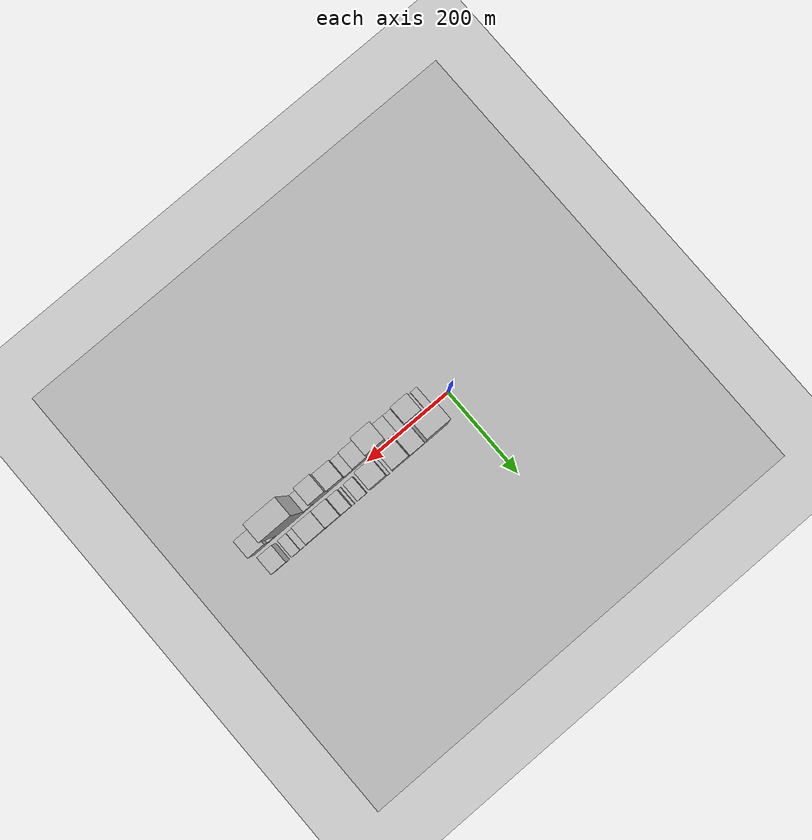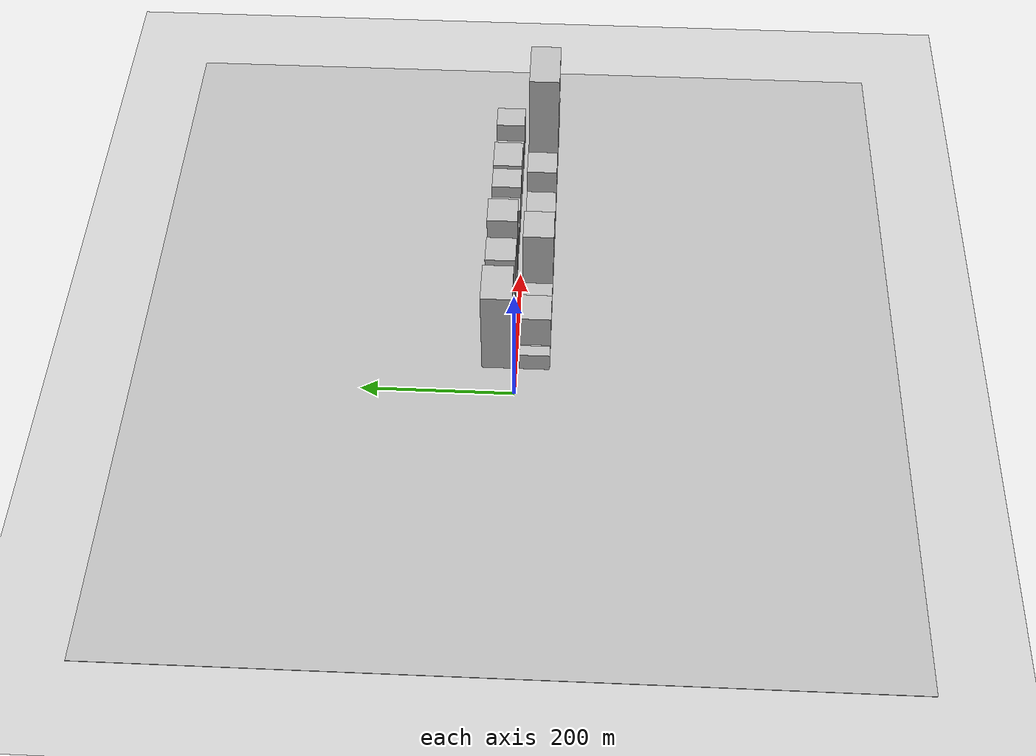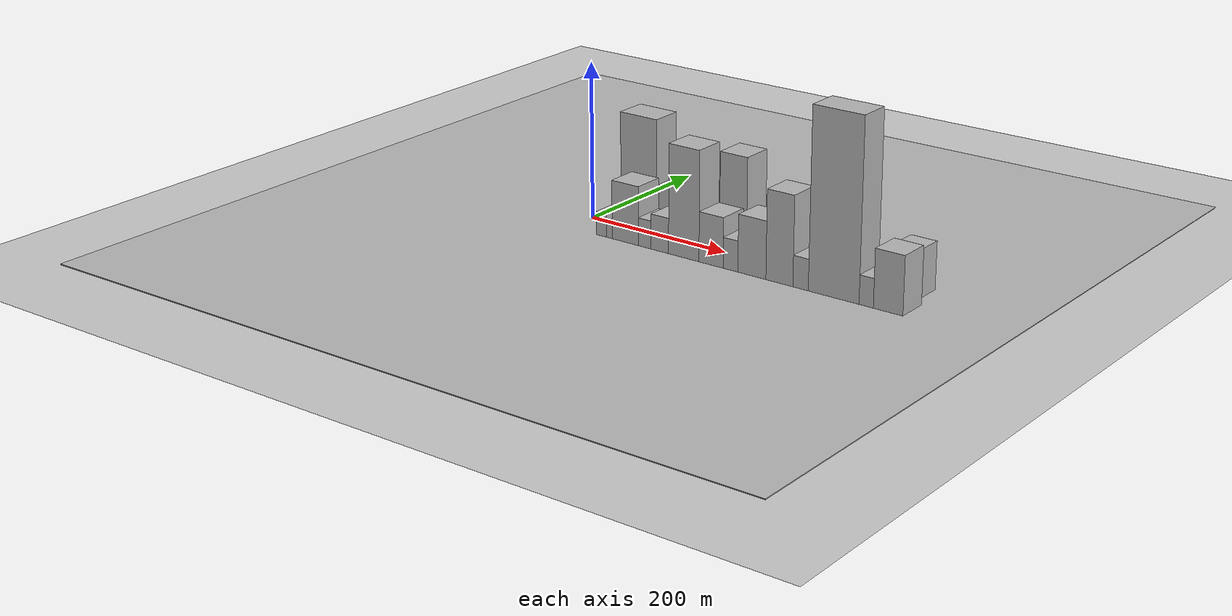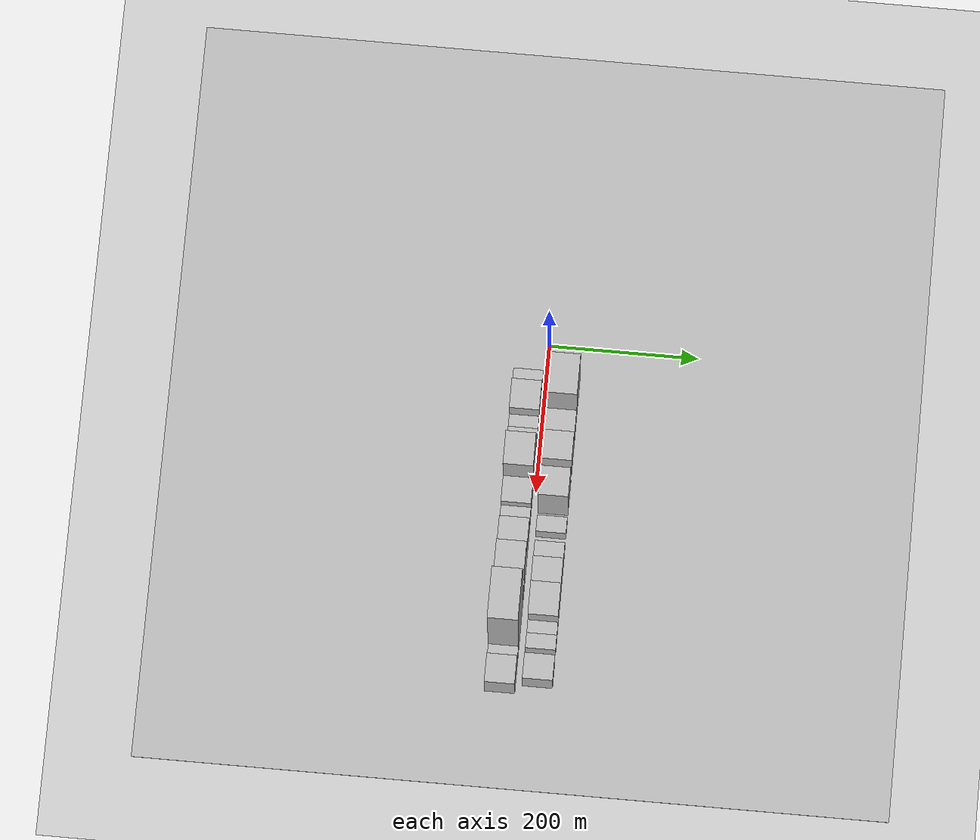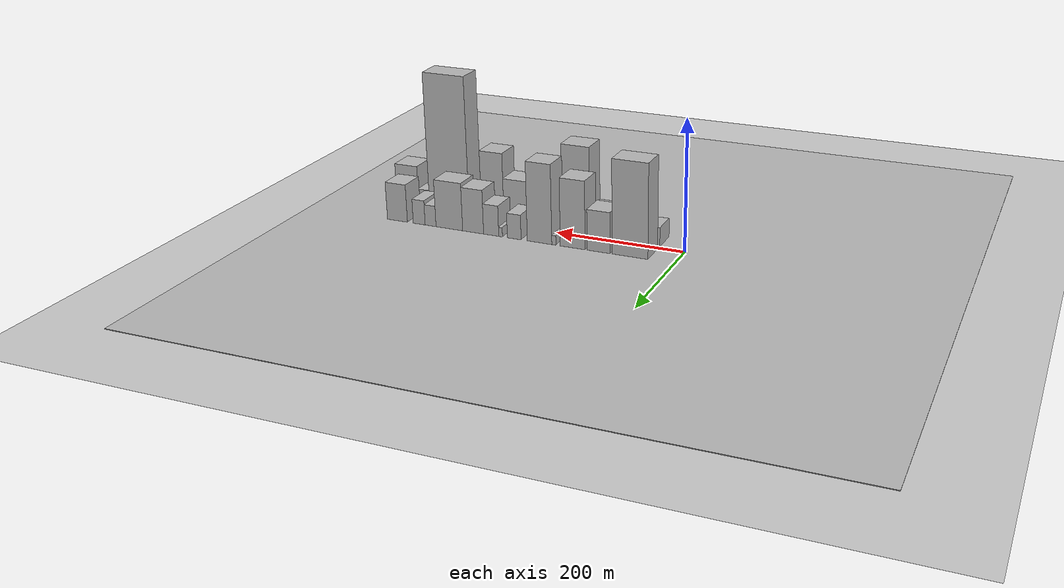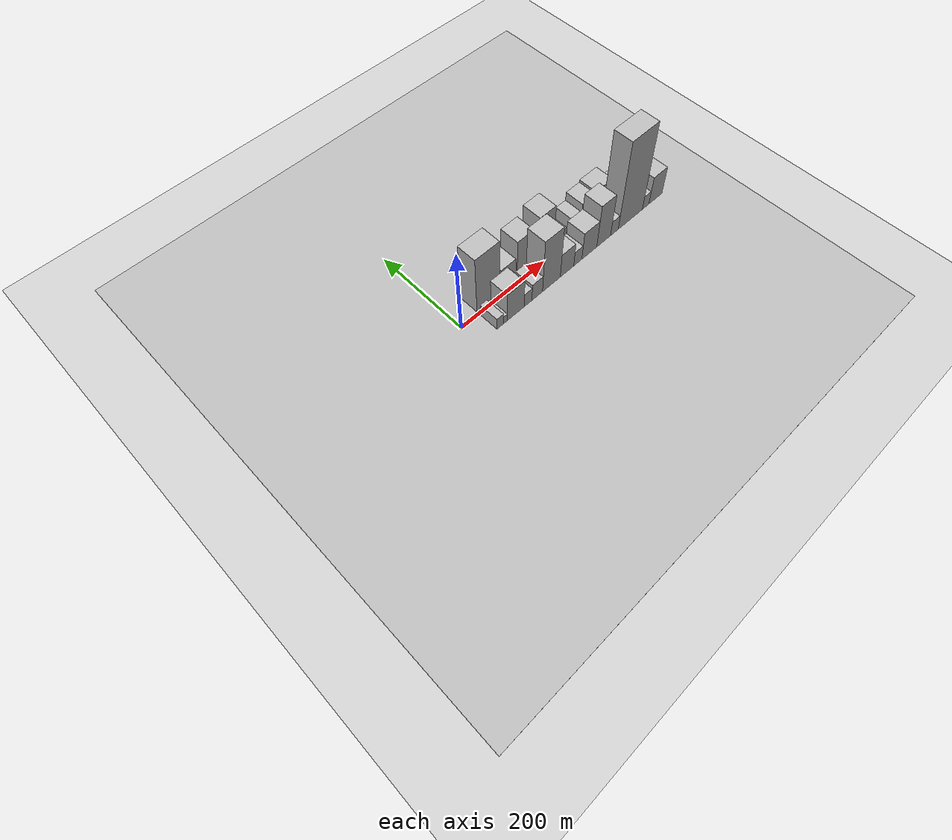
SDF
<?xml version="1.0" encoding="utf-8"?>

<sdf version="1.6">

   <world name="default">

      <gui fullscreen="0">

         <camera name="user_camera">

            <pose>-15 0 4.57585 0 0 0</pose>

            <view_controller>orbit</view_controller>

         </camera>

      </gui>

      <scene>

         <sky>

           <clouds>

             <speed>12</speed>

           </clouds>

         </sky>

         <ambient>0.4 0.4 0.4 1</ambient>

         <background>0.7 0.7 0.7 1</background>

         <shadows>1</shadows>

      </scene>

      <gravity>0 0 -9.8066</gravity>

      <magnetic_field>6e-06 2.3e-05 -4.2e-05</magnetic_field>

      <physics default="0" name="default_physics" type="ode">

         <ode>

            <solver>

               <type>quick</type>

               <iters>10</iters>

               <sor>1.0</sor>

               <use_dynamic_moi_rescaling>0</use_dynamic_moi_rescaling>

            </solver>

            <constraints>

               <cfm>0</cfm>

               <erp>0.2</erp>

               <contact_max_correcting_vel>100</contact_max_correcting_vel>

               <contact_surface_layer>0.001</contact_surface_layer>

            </constraints>

         </ode>

         <max_step_size>0.004</max_step_size>

         <real_time_factor>1</real_time_factor>

         <real_time_update_rate>250</real_time_update_rate>

      </physics>

      <light name="sun" type="directional">

         <cast_shadows>1</cast_shadows>

         <pose>0 0 10 0 0 0</pose>

         <diffuse>0.8 0.8 0.8 1</diffuse>

         <specular>0.2 0.2 0.2 1</specular>

         <attenuation>

            <range>1000</range>

            <constant>0.9</constant>

            <linear>0.01</linear>

            <quadratic>0.001</quadratic>

         </attenuation>

         <direction>-0.5 0.1 -0.9</direction>

      </light>

      <include>

         <name>ground_plane_1</name>

         <uri>model://HANNAS_ground_plane</uri>

         <pose>0 0 0  0 0 0</pose>

      </include>

      <include>

         <name>ground_plane_2</name>

         <uri>model://HANNAS_ground_plane</uri>

         <pose>100 0 0  0 0 0</pose>

      </include>

      <model name="building_1">

         <static>1</static>

         <pose frame="">67.3387 24.5000 0 0.000000 0.000000 1.570796</pose>

         <link name="link">

            <pose frame="">0 0 72.00 0 0 0</pose>

            <collision name="collision">

               <geometry>

                  <box>

                     <size>40.0000 54.6774 144.0000</size>

                  </box>

               </geometry>

               <max_contacts>10</max_contacts>

               <surface>

                  <contact>

                     <ode/>

                  </contact>

                  <bounce/>

                  <friction>

                     <torsional>

                        <ode/>

                     </torsional>

                     <ode/>

                  </friction>

               </surface>

            </collision>

            <visual name="visual">

               <cast_shadows>0</cast_shadows>

               <geometry>

                  <box>

                     <size>40.0000 54.6774 144.0000</size>

                  </box>

               </geometry>

               <material>

                  <script>

                     <uri>model://HANNAS_wall/materials/scripts</uri>

                     <uri>model://HANNAS_wall/materials/textures</uri>

                     <name>vrc/HANNAS_wall</name>

                  </script>

               </material>

            </visual>

            <self_collide>0</self_collide>

            <enable_wind>0</enable_wind>

            <kinematic>0</kinematic>

         </link>

      </model>

      <model name="building_2">

         <static>1</static>

         <pose frame="">115.3462 24.5000 0 0.000000 0.000000 1.570796</pose>

         <link name="link">

            <pose frame="">0 0 31.50 0 0 0</pose>

            <collision name="collision">

               <geometry>

                  <box>

                     <size>40.0000 35.3375 63.0000</size>

                  </box>

               </geometry>

               <max_contacts>10</max_contacts>

               <surface>

                  <contact>

                     <ode/>

                  </contact>

                  <bounce/>

                  <friction>

                     <torsional>

                        <ode/>

                     </torsional>

                     <ode/>

                  </friction>

               </surface>

            </collision>

            <visual name="visual">

               <cast_shadows>0</cast_shadows>

               <geometry>

                  <box>

                     <size>40.0000 35.3375 63.0000</size>

                  </box>

               </geometry>

               <material>

                  <script>

                     <uri>model://HANNAS_wall/materials/scripts</uri>

                     <uri>model://HANNAS_wall/materials/textures</uri>

                     <name>vrc/HANNAS_wall</name>

                  </script>

               </material>

            </visual>

            <self_collide>0</self_collide>

            <enable_wind>0</enable_wind>

            <kinematic>0</kinematic>

         </link>

      </model>

      <model name="building_3">

         <static>1</static>

         <pose frame="">155.4656 24.5000 0 0.000000 0.000000 1.570796</pose>

         <link name="link">

            <pose frame="">0 0 52.50 0 0 0</pose>

            <collision name="collision">

               <geometry>

                  <box>

                     <size>40.0000 38.9012 105.0000</size>

                  </box>

               </geometry>

               <max_contacts>10</max_contacts>

               <surface>

                  <contact>

                     <ode/>

                  </contact>

                  <bounce/>

                  <friction>

                     <torsional>

                        <ode/>

                     </torsional>

                     <ode/>

                  </friction>

               </surface>

            </collision>

            <visual name="visual">

               <cast_shadows>0</cast_shadows>

               <geometry>

                  <box>

                     <size>40.0000 38.9012 105.0000</size>

                  </box>

               </geometry>

               <material>

                  <script>

                     <uri>model://HANNAS_wall/materials/scripts</uri>

                     <uri>model://HANNAS_wall/materials/textures</uri>

                     <name>vrc/HANNAS_wall</name>

                  </script>

               </material>

            </visual>

            <self_collide>0</self_collide>

            <enable_wind>0</enable_wind>

            <kinematic>0</kinematic>

         </link>

      </model>

      <model name="building_4">

         <static>1</static>

         <pose frame="">185.1251 24.5000 0 0.000000 0.000000 1.570796</pose>

         <link name="link">

            <pose frame="">0 0 7.50 0 0 0</pose>

            <collision name="collision">

               <geometry>

                  <box>

                     <size>40.0000 6.4178 15.0000</size>

                  </box>

               </geometry>

               <max_contacts>10</max_contacts>

               <surface>

                  <contact>

                     <ode/>

                  </contact>

                  <bounce/>

                  <friction>

                     <torsional>

                        <ode/>

                     </torsional>

                     <ode/>

                  </friction>

               </surface>

            </collision>

            <visual name="visual">

               <cast_shadows>0</cast_shadows>

               <geometry>

                  <box>

                     <size>40.0000 6.4178 15.0000</size>

                  </box>

               </geometry>

               <material>

                  <script>

                     <uri>model://HANNAS_wall/materials/scripts</uri>

                     <uri>model://HANNAS_wall/materials/textures</uri>

                     <name>vrc/HANNAS_wall</name>

                  </script>

               </material>

            </visual>

            <self_collide>0</self_collide>

            <enable_wind>0</enable_wind>

            <kinematic>0</kinematic>

         </link>

      </model>

      <model name="building_5">

         <static>1</static>

         <pose frame="">207.8693 24.5000 0 0.000000 0.000000 1.570796</pose>

         <link name="link">

            <pose frame="">0 0 61.50 0 0 0</pose>

            <collision name="collision">

               <geometry>

                  <box>

                     <size>40.0000 39.0706 123.0000</size>

                  </box>

               </geometry>

               <max_contacts>10</max_contacts>

               <surface>

                  <contact>

                     <ode/>

                  </contact>

                  <bounce/>

                  <friction>

                     <torsional>

                        <ode/>

                     </torsional>

                     <ode/>

                  </friction>

               </surface>

            </collision>

            <visual name="visual">

               <cast_shadows>0</cast_shadows>

               <geometry>

                  <box>

                     <size>40.0000 39.0706 123.0000</size>

                  </box>

               </geometry>

               <material>

                  <script>

                     <uri>model://HANNAS_wall/materials/scripts</uri>

                     <uri>model://HANNAS_wall/materials/textures</uri>

                     <name>vrc/HANNAS_wall</name>

                  </script>

               </material>

            </visual>

            <self_collide>0</self_collide>

            <enable_wind>0</enable_wind>

            <kinematic>0</kinematic>

         </link>

      </model>

      <model name="building_6">

         <static>1</static>

         <pose frame="">248.5133 24.5000 0 0.000000 0.000000 1.570796</pose>

         <link name="link">

            <pose frame="">0 0 19.50 0 0 0</pose>

            <collision name="collision">

               <geometry>

                  <box>

                     <size>40.0000 22.2174 39.0000</size>

                  </box>

               </geometry>

               <max_contacts>10</max_contacts>

               <surface>

                  <contact>

                     <ode/>

                  </contact>

                  <bounce/>

                  <friction>

                     <torsional>

                        <ode/>

                     </torsional>

                     <ode/>

                  </friction>

               </surface>

            </collision>

            <visual name="visual">

               <cast_shadows>0</cast_shadows>

               <geometry>

                  <box>

                     <size>40.0000 22.2174 39.0000</size>

                  </box>

               </geometry>

               <material>

                  <script>

                     <uri>model://HANNAS_wall/materials/scripts</uri>

                     <uri>model://HANNAS_wall/materials/textures</uri>

                     <name>vrc/HANNAS_wall</name>

                  </script>

               </material>

            </visual>

            <self_collide>0</self_collide>

            <enable_wind>0</enable_wind>

            <kinematic>0</kinematic>

         </link>

      </model>

      <model name="building_7">

         <static>1</static>

         <pose frame="">270.6315 24.5000 0 0.000000 0.000000 1.570796</pose>

         <link name="link">

            <pose frame="">0 0 7.50 0 0 0</pose>

            <collision name="collision">

               <geometry>

                  <box>

                     <size>40.0000 6.0190 15.0000</size>

                  </box>

               </geometry>

               <max_contacts>10</max_contacts>

               <surface>

                  <contact>

                     <ode/>

                  </contact>

                  <bounce/>

                  <friction>

                     <torsional>

                        <ode/>

                     </torsional>

                     <ode/>

                  </friction>

               </surface>

            </collision>

            <visual name="visual">

               <cast_shadows>0</cast_shadows>

               <geometry>

                  <box>

                     <size>40.0000 6.0190 15.0000</size>

                  </box>

               </geometry>

               <material>

                  <script>

                     <uri>model://HANNAS_wall/materials/scripts</uri>

                     <uri>model://HANNAS_wall/materials/textures</uri>

                     <name>vrc/HANNAS_wall</name>

                  </script>

               </material>

            </visual>

            <self_collide>0</self_collide>

            <enable_wind>0</enable_wind>

            <kinematic>0</kinematic>

         </link>

      </model>

      <model name="building_8">

         <static>1</static>

         <pose frame="">286.0409 24.5000 0 0.000000 0.000000 1.570796</pose>

         <link name="link">

            <pose frame="">0 0 24.00 0 0 0</pose>

            <collision name="collision">

               <geometry>

                  <box>

                     <size>40.0000 24.7998 48.0000</size>

                  </box>

               </geometry>

               <max_contacts>10</max_contacts>

               <surface>

                  <contact>

                     <ode/>

                  </contact>

                  <bounce/>

                  <friction>

                     <torsional>

                        <ode/>

                     </torsional>

                     <ode/>

                  </friction>

               </surface>

            </collision>

            <visual name="visual">

               <cast_shadows>0</cast_shadows>

               <geometry>

                  <box>

                     <size>40.0000 24.7998 48.0000</size>

                  </box>

               </geometry>

               <material>

                  <script>

                     <uri>model://HANNAS_wall/materials/scripts</uri>

                     <uri>model://HANNAS_wall/materials/textures</uri>

                     <name>vrc/HANNAS_wall</name>

                  </script>

               </material>

            </visual>

            <self_collide>0</self_collide>

            <enable_wind>0</enable_wind>

            <kinematic>0</kinematic>

         </link>

      </model>

      <model name="building_9">

         <static>1</static>

         <pose frame="">315.7480 24.5000 0 0.000000 0.000000 1.570796</pose>

         <link name="link">

            <pose frame="">0 0 34.50 0 0 0</pose>

            <collision name="collision">

               <geometry>

                  <box>

                     <size>40.0000 34.6144 69.0000</size>

                  </box>

               </geometry>

               <max_contacts>10</max_contacts>

               <surface>

                  <contact>

                     <ode/>

                  </contact>

                  <bounce/>

                  <friction>

                     <torsional>

                        <ode/>

                     </torsional>

                     <ode/>

                  </friction>

               </surface>

            </collision>

            <visual name="visual">

               <cast_shadows>0</cast_shadows>

               <geometry>

                  <box>

                     <size>40.0000 34.6144 69.0000</size>

                  </box>

               </geometry>

               <material>

                  <script>

                     <uri>model://HANNAS_wall/materials/scripts</uri>

                     <uri>model://HANNAS_wall/materials/textures</uri>

                     <name>vrc/HANNAS_wall</name>

                  </script>

               </material>

            </visual>

            <self_collide>0</self_collide>

            <enable_wind>0</enable_wind>

            <kinematic>0</kinematic>

         </link>

      </model>

      <model name="building_10">

         <static>1</static>

         <pose frame="">355.4425 24.5000 0 0.000000 0.000000 1.570796</pose>

         <link name="link">

            <pose frame="">0 0 37.50 0 0 0</pose>

            <collision name="collision">

               <geometry>

                  <box>

                     <size>40.0000 44.7748 75.0000</size>

                  </box>

               </geometry>

               <max_contacts>10</max_contacts>

               <surface>

                  <contact>

                     <ode/>

                  </contact>

                  <bounce/>

                  <friction>

                     <torsional>

                        <ode/>

                     </torsional>

                     <ode/>

                  </friction>

               </surface>

            </collision>

            <visual name="visual">

               <cast_shadows>0</cast_shadows>

               <geometry>

                  <box>

                     <size>40.0000 44.7748 75.0000</size>

                  </box>

               </geometry>

               <material>

                  <script>

                     <uri>model://HANNAS_wall/materials/scripts</uri>

                     <uri>model://HANNAS_wall/materials/textures</uri>

                     <name>vrc/HANNAS_wall</name>

                  </script>

               </material>

            </visual>

            <self_collide>0</self_collide>

            <enable_wind>0</enable_wind>

            <kinematic>0</kinematic>

         </link>

      </model>

      <model name="building_11">

         <static>1</static>

         <pose frame="">387.0207 24.5000 0 0.000000 0.000000 1.570796</pose>

         <link name="link">

            <pose frame="">0 0 16.50 0 0 0</pose>

            <collision name="collision">

               <geometry>

                  <box>

                     <size>40.0000 18.3817 33.0000</size>

                  </box>

               </geometry>

               <max_contacts>10</max_contacts>

               <surface>

                  <contact>

                     <ode/>

                  </contact>

                  <bounce/>

                  <friction>

                     <torsional>

                        <ode/>

                     </torsional>

                     <ode/>

                  </friction>

               </surface>

            </collision>

            <visual name="visual">

               <cast_shadows>0</cast_shadows>

               <geometry>

                  <box>

                     <size>40.0000 18.3817 33.0000</size>

                  </box>

               </geometry>

               <material>

                  <script>

                     <uri>model://HANNAS_wall/materials/scripts</uri>

                     <uri>model://HANNAS_wall/materials/textures</uri>

                     <name>vrc/HANNAS_wall</name>

                  </script>

               </material>

            </visual>

            <self_collide>0</self_collide>

            <enable_wind>0</enable_wind>

            <kinematic>0</kinematic>

         </link>

      </model>

      <model name="building_12">

         <static>1</static>

         <pose frame="">406.3559 24.5000 0 0.000000 0.000000 1.570796</pose>

         <link name="link">

            <pose frame="">0 0 19.50 0 0 0</pose>

            <collision name="collision">

               <geometry>

                  <box>

                     <size>40.0000 20.2887 39.0000</size>

                  </box>

               </geometry>

               <max_contacts>10</max_contacts>

               <surface>

                  <contact>

                     <ode/>

                  </contact>

                  <bounce/>

                  <friction>

                     <torsional>

                        <ode/>

                     </torsional>

                     <ode/>

                  </friction>

               </surface>

            </collision>

            <visual name="visual">

               <cast_shadows>0</cast_shadows>

               <geometry>

                  <box>

                     <size>40.0000 20.2887 39.0000</size>

                  </box>

               </geometry>

               <material>

                  <script>

                     <uri>model://HANNAS_wall/materials/scripts</uri>

                     <uri>model://HANNAS_wall/materials/textures</uri>

                     <name>vrc/HANNAS_wall</name>

                  </script>

               </material>

            </visual>

            <self_collide>0</self_collide>

            <enable_wind>0</enable_wind>

            <kinematic>0</kinematic>

         </link>

      </model>

      <model name="building_13">

         <static>1</static>

         <pose frame="">443.6875 24.5000 0 0.000000 0.000000 1.570796</pose>

         <link name="link">

            <pose frame="">0 0 30.00 0 0 0</pose>

            <collision name="collision">

               <geometry>

                  <box>

                     <size>40.0000 34.3745 60.0000</size>

                  </box>

               </geometry>

               <max_contacts>10</max_contacts>

               <surface>

                  <contact>

                     <ode/>

                  </contact>

                  <bounce/>

                  <friction>

                     <torsional>

                        <ode/>

                     </torsional>

                     <ode/>

                  </friction>

               </surface>

            </collision>

            <visual name="visual">

               <cast_shadows>0</cast_shadows>

               <geometry>

                  <box>

                     <size>40.0000 34.3745 60.0000</size>

                  </box>

               </geometry>

               <material>

                  <script>

                     <uri>model://HANNAS_wall/materials/scripts</uri>

                     <uri>model://HANNAS_wall/materials/textures</uri>

                     <name>vrc/HANNAS_wall</name>

                  </script>

               </material>

            </visual>

            <self_collide>0</self_collide>

            <enable_wind>0</enable_wind>

            <kinematic>0</kinematic>

         </link>

      </model>

      <model name="building_14">

         <static>1</static>

         <pose frame="">47.8521 -24.5000 0 0.000000 0.000000 1.570796</pose>

         <link name="link">

            <pose frame="">0 0 15.00 0 0 0</pose>

            <collision name="collision">

               <geometry>

                  <box>

                     <size>40.0000 15.7043 30.0000</size>

                  </box>

               </geometry>

               <max_contacts>10</max_contacts>

               <surface>

                  <contact>

                     <ode/>

                  </contact>

                  <bounce/>

                  <friction>

                     <torsional>

                        <ode/>

                     </torsional>

                     <ode/>

                  </friction>

               </surface>

            </collision>

            <visual name="visual">

               <cast_shadows>0</cast_shadows>

               <geometry>

                  <box>

                     <size>40.0000 15.7043 30.0000</size>

                  </box>

               </geometry>

               <material>

                  <script>

                     <uri>model://HANNAS_wall/materials/scripts</uri>

                     <uri>model://HANNAS_wall/materials/textures</uri>

                     <name>vrc/HANNAS_wall</name>

                  </script>

               </material>

            </visual>

            <self_collide>0</self_collide>

            <enable_wind>0</enable_wind>

            <kinematic>0</kinematic>

         </link>

      </model>

      <model name="building_15">

         <static>1</static>

         <pose frame="">60.0097 -24.5000 0 0.000000 0.000000 1.570796</pose>

         <link name="link">

            <pose frame="">0 0 10.50 0 0 0</pose>

            <collision name="collision">

               <geometry>

                  <box>

                     <size>40.0000 8.6108 21.0000</size>

                  </box>

               </geometry>

               <max_contacts>10</max_contacts>

               <surface>

                  <contact>

                     <ode/>

                  </contact>

                  <bounce/>

                  <friction>

                     <torsional>

                        <ode/>

                     </torsional>

                     <ode/>

                  </friction>

               </surface>

            </collision>

            <visual name="visual">

               <cast_shadows>0</cast_shadows>

               <geometry>

                  <box>

                     <size>40.0000 8.6108 21.0000</size>

                  </box>

               </geometry>

               <material>

                  <script>

                     <uri>model://HANNAS_wall/materials/scripts</uri>

                     <uri>model://HANNAS_wall/materials/textures</uri>

                     <name>vrc/HANNAS_wall</name>

                  </script>

               </material>

            </visual>

            <self_collide>0</self_collide>

            <enable_wind>0</enable_wind>

            <kinematic>0</kinematic>

         </link>

      </model>

      <model name="building_16">

         <static>1</static>

         <pose frame="">84.3087 -24.5000 0 0.000000 0.000000 1.570796</pose>

         <link name="link">

            <pose frame="">0 0 37.50 0 0 0</pose>

            <collision name="collision">

               <geometry>

                  <box>

                     <size>40.0000 39.9873 75.0000</size>

                  </box>

               </geometry>

               <max_contacts>10</max_contacts>

               <surface>

                  <contact>

                     <ode/>

                  </contact>

                  <bounce/>

                  <friction>

                     <torsional>

                        <ode/>

                     </torsional>

                     <ode/>

                  </friction>

               </surface>

            </collision>

            <visual name="visual">

               <cast_shadows>0</cast_shadows>

               <geometry>

                  <box>

                     <size>40.0000 39.9873 75.0000</size>

                  </box>

               </geometry>

               <material>

                  <script>

                     <uri>model://HANNAS_wall/materials/scripts</uri>

                     <uri>model://HANNAS_wall/materials/textures</uri>

                     <name>vrc/HANNAS_wall</name>

                  </script>

               </material>

            </visual>

            <self_collide>0</self_collide>

            <enable_wind>0</enable_wind>

            <kinematic>0</kinematic>

         </link>

      </model>

      <model name="building_17">

         <static>1</static>

         <pose frame="">113.7054 -24.5000 0 0.000000 0.000000 1.570796</pose>

         <link name="link">

            <pose frame="">0 0 18.00 0 0 0</pose>

            <collision name="collision">

               <geometry>

                  <box>

                     <size>40.0000 18.8061 36.0000</size>

                  </box>

               </geometry>

               <max_contacts>10</max_contacts>

               <surface>

                  <contact>

                     <ode/>

                  </contact>

                  <bounce/>

                  <friction>

                     <torsional>

                        <ode/>

                     </torsional>

                     <ode/>

                  </friction>

               </surface>

            </collision>

            <visual name="visual">

               <cast_shadows>0</cast_shadows>

               <geometry>

                  <box>

                     <size>40.0000 18.8061 36.0000</size>

                  </box>

               </geometry>

               <material>

                  <script>

                     <uri>model://HANNAS_wall/materials/scripts</uri>

                     <uri>model://HANNAS_wall/materials/textures</uri>

                     <name>vrc/HANNAS_wall</name>

                  </script>

               </material>

            </visual>

            <self_collide>0</self_collide>

            <enable_wind>0</enable_wind>

            <kinematic>0</kinematic>

         </link>

      </model>

      <model name="building_18">

         <static>1</static>

         <pose frame="">136.1593 -24.5000 0 0.000000 0.000000 1.570796</pose>

         <link name="link">

            <pose frame="">0 0 22.50 0 0 0</pose>

            <collision name="collision">

               <geometry>

                  <box>

                     <size>40.0000 26.1017 45.0000</size>

                  </box>

               </geometry>

               <max_contacts>10</max_contacts>

               <surface>

                  <contact>

                     <ode/>

                  </contact>

                  <bounce/>

                  <friction>

                     <torsional>

                        <ode/>

                     </torsional>

                     <ode/>

                  </friction>

               </surface>

            </collision>

            <visual name="visual">

               <cast_shadows>0</cast_shadows>

               <geometry>

                  <box>

                     <size>40.0000 26.1017 45.0000</size>

                  </box>

               </geometry>

               <material>

                  <script>

                     <uri>model://HANNAS_wall/materials/scripts</uri>

                     <uri>model://HANNAS_wall/materials/textures</uri>

                     <name>vrc/HANNAS_wall</name>

                  </script>

               </material>

            </visual>

            <self_collide>0</self_collide>

            <enable_wind>0</enable_wind>

            <kinematic>0</kinematic>

         </link>

      </model>

      <model name="building_19">

         <static>1</static>

         <pose frame="">171.4596 -24.5000 0 0.000000 0.000000 1.570796</pose>

         <link name="link">

            <pose frame="">0 0 69.00 0 0 0</pose>

            <collision name="collision">

               <geometry>

                  <box>

                     <size>40.0000 44.4990 138.0000</size>

                  </box>

               </geometry>

               <max_contacts>10</max_contacts>

               <surface>

                  <contact>

                     <ode/>

                  </contact>

                  <bounce/>

                  <friction>

                     <torsional>

                        <ode/>

                     </torsional>

                     <ode/>

                  </friction>

               </surface>

            </collision>

            <visual name="visual">

               <cast_shadows>0</cast_shadows>

               <geometry>

                  <box>

                     <size>40.0000 44.4990 138.0000</size>

                  </box>

               </geometry>

               <material>

                  <script>

                     <uri>model://HANNAS_wall/materials/scripts</uri>

                     <uri>model://HANNAS_wall/materials/textures</uri>

                     <name>vrc/HANNAS_wall</name>

                  </script>

               </material>

            </visual>

            <self_collide>0</self_collide>

            <enable_wind>0</enable_wind>

            <kinematic>0</kinematic>

         </link>

      </model>

      <model name="building_20">

         <static>1</static>

         <pose frame="">211.1219 -24.5000 0 0.000000 0.000000 1.570796</pose>

         <link name="link">

            <pose frame="">0 0 31.50 0 0 0</pose>

            <collision name="collision">

               <geometry>

                  <box>

                     <size>40.0000 34.8255 63.0000</size>

                  </box>

               </geometry>

               <max_contacts>10</max_contacts>

               <surface>

                  <contact>

                     <ode/>

                  </contact>

                  <bounce/>

                  <friction>

                     <torsional>

                        <ode/>

                     </torsional>

                     <ode/>

                  </friction>

               </surface>

            </collision>

            <visual name="visual">

               <cast_shadows>0</cast_shadows>

               <geometry>

                  <box>

                     <size>40.0000 34.8255 63.0000</size>

                  </box>

               </geometry>

               <material>

                  <script>

                     <uri>model://HANNAS_wall/materials/scripts</uri>

                     <uri>model://HANNAS_wall/materials/textures</uri>

                     <name>vrc/HANNAS_wall</name>

                  </script>

               </material>

            </visual>

            <self_collide>0</self_collide>

            <enable_wind>0</enable_wind>

            <kinematic>0</kinematic>

         </link>

      </model>

      <model name="building_21">

         <static>1</static>

         <pose frame="">239.0054 -24.5000 0 0.000000 0.000000 1.570796</pose>

         <link name="link">

            <pose frame="">0 0 19.50 0 0 0</pose>

            <collision name="collision">

               <geometry>

                  <box>

                     <size>40.0000 20.9414 39.0000</size>

                  </box>

               </geometry>

               <max_contacts>10</max_contacts>

               <surface>

                  <contact>

                     <ode/>

                  </contact>

                  <bounce/>

                  <friction>

                     <torsional>

                        <ode/>

                     </torsional>

                     <ode/>

                  </friction>

               </surface>

            </collision>

            <visual name="visual">

               <cast_shadows>0</cast_shadows>

               <geometry>

                  <box>

                     <size>40.0000 20.9414 39.0000</size>

                  </box>

               </geometry>

               <material>

                  <script>

                     <uri>model://HANNAS_wall/materials/scripts</uri>

                     <uri>model://HANNAS_wall/materials/textures</uri>

                     <name>vrc/HANNAS_wall</name>

                  </script>

               </material>

            </visual>

            <self_collide>0</self_collide>

            <enable_wind>0</enable_wind>

            <kinematic>0</kinematic>

         </link>

      </model>

      <model name="building_22">

         <static>1</static>

         <pose frame="">269.1358 -24.5000 0 0.000000 0.000000 1.570796</pose>

         <link name="link">

            <pose frame="">0 0 36.00 0 0 0</pose>

            <collision name="collision">

               <geometry>

                  <box>

                     <size>40.0000 39.3194 72.0000</size>

                  </box>

               </geometry>

               <max_contacts>10</max_contacts>

               <surface>

                  <contact>

                     <ode/>

                  </contact>

                  <bounce/>

                  <friction>

                     <torsional>

                        <ode/>

                     </torsional>

                     <ode/>

                  </friction>

               </surface>

            </collision>

            <visual name="visual">

               <cast_shadows>0</cast_shadows>

               <geometry>

                  <box>

                     <size>40.0000 39.3194 72.0000</size>

                  </box>

               </geometry>

               <material>

                  <script>

                     <uri>model://HANNAS_wall/materials/scripts</uri>

                     <uri>model://HANNAS_wall/materials/textures</uri>

                     <name>vrc/HANNAS_wall</name>

                  </script>

               </material>

            </visual>

            <self_collide>0</self_collide>

            <enable_wind>0</enable_wind>

            <kinematic>0</kinematic>

         </link>

      </model>

      <model name="building_23">

         <static>1</static>

         <pose frame="">307.4541 -24.5000 0 0.000000 0.000000 1.570796</pose>

         <link name="link">

            <pose frame="">0 0 55.50 0 0 0</pose>

            <collision name="collision">

               <geometry>

                  <box>

                     <size>40.0000 37.3172 111.0000</size>

                  </box>

               </geometry>

               <max_contacts>10</max_contacts>

               <surface>

                  <contact>

                     <ode/>

                  </contact>

                  <bounce/>

                  <friction>

                     <torsional>

                        <ode/>

                     </torsional>

                     <ode/>

                  </friction>

               </surface>

            </collision>

            <visual name="visual">

               <cast_shadows>0</cast_shadows>

               <geometry>

                  <box>

                     <size>40.0000 37.3172 111.0000</size>

                  </box>

               </geometry>

               <material>

                  <script>

                     <uri>model://HANNAS_wall/materials/scripts</uri>

                     <uri>model://HANNAS_wall/materials/textures</uri>

                     <name>vrc/HANNAS_wall</name>

                  </script>

               </material>

            </visual>

            <self_collide>0</self_collide>

            <enable_wind>0</enable_wind>

            <kinematic>0</kinematic>

         </link>

      </model>

      <model name="building_24">

         <static>1</static>

         <pose frame="">336.6369 -24.5000 0 0.000000 0.000000 1.570796</pose>

         <link name="link">

            <pose frame="">0 0 19.50 0 0 0</pose>

            <collision name="collision">

               <geometry>

                  <box>

                     <size>40.0000 21.0484 39.0000</size>

                  </box>

               </geometry>

               <max_contacts>10</max_contacts>

               <surface>

                  <contact>

                     <ode/>

                  </contact>

                  <bounce/>

                  <friction>

                     <torsional>

                        <ode/>

                     </torsional>

                     <ode/>

                  </friction>

               </surface>

            </collision>

            <visual name="visual">

               <cast_shadows>0</cast_shadows>

               <geometry>

                  <box>

                     <size>40.0000 21.0484 39.0000</size>

                  </box>

               </geometry>

               <material>

                  <script>

                     <uri>model://HANNAS_wall/materials/scripts</uri>

                     <uri>model://HANNAS_wall/materials/textures</uri>

                     <name>vrc/HANNAS_wall</name>

                  </script>

               </material>

            </visual>

            <self_collide>0</self_collide>

            <enable_wind>0</enable_wind>

            <kinematic>0</kinematic>

         </link>

      </model>

      <model name="building_25">

         <static>1</static>

         <pose frame="">381.0954 -24.5000 0 0.000000 0.000000 1.570796</pose>

         <link name="link">

            <pose frame="">0 0 111.00 0 0 0</pose>

            <collision name="collision">

               <geometry>

                  <box>

                     <size>40.0000 67.8686 222.0000</size>

                  </box>

               </geometry>

               <max_contacts>10</max_contacts>

               <surface>

                  <contact>

                     <ode/>

                  </contact>

                  <bounce/>

                  <friction>

                     <torsional>

                        <ode/>

                     </torsional>

                     <ode/>

                  </friction>

               </surface>

            </collision>

            <visual name="visual">

               <cast_shadows>0</cast_shadows>

               <geometry>

                  <box>

                     <size>40.0000 67.8686 222.0000</size>

                  </box>

               </geometry>

               <material>

                  <script>

                     <uri>model://HANNAS_wall/materials/scripts</uri>

                     <uri>model://HANNAS_wall/materials/textures</uri>

                     <name>vrc/HANNAS_wall</name>

                  </script>

               </material>

            </visual>

            <self_collide>0</self_collide>

            <enable_wind>0</enable_wind>

            <kinematic>0</kinematic>

         </link>

      </model>

      <model name="building_26">

         <static>1</static>

         <pose frame="">424.4022 -24.5000 0 0.000000 0.000000 1.570796</pose>

         <link name="link">

            <pose frame="">0 0 18.00 0 0 0</pose>

            <collision name="collision">

               <geometry>

                  <box>

                     <size>40.0000 18.7449 36.0000</size>

                  </box>

               </geometry>

               <max_contacts>10</max_contacts>

               <surface>

                  <contact>

                     <ode/>

                  </contact>

                  <bounce/>

                  <friction>

                     <torsional>

                        <ode/>

                     </torsional>

                     <ode/>

                  </friction>

               </surface>

            </collision>

            <visual name="visual">

               <cast_shadows>0</cast_shadows>

               <geometry>

                  <box>

                     <size>40.0000 18.7449 36.0000</size>

                  </box>

               </geometry>

               <material>

                  <script>

                     <uri>model://HANNAS_wall/materials/scripts</uri>

                     <uri>model://HANNAS_wall/materials/textures</uri>

                     <name>vrc/HANNAS_wall</name>

                  </script>

               </material>

            </visual>

            <self_collide>0</self_collide>

            <enable_wind>0</enable_wind>

            <kinematic>0</kinematic>

         </link>

      </model>

      <model name="building_27">

         <static>1</static>

         <pose frame="">452.9117 -24.5000 0 0.000000 0.000000 1.570796</pose>

         <link name="link">

            <pose frame="">0 0 36.00 0 0 0</pose>

            <collision name="collision">

               <geometry>

                  <box>

                     <size>40.0000 38.2742 72.0000</size>

                  </box>

               </geometry>

               <max_contacts>10</max_contacts>

               <surface>

                  <contact>

                     <ode/>

                  </contact>

                  <bounce/>

                  <friction>

                     <torsional>

                        <ode/>

                     </torsional>

                     <ode/>

                  </friction>

               </surface>

            </collision>

            <visual name="visual">

               <cast_shadows>0</cast_shadows>

               <geometry>

                  <box>

                     <size>40.0000 38.2742 72.0000</size>

                  </box>

               </geometry>

               <material>

                  <script>

                     <uri>model://HANNAS_wall/materials/scripts</uri>

                     <uri>model://HANNAS_wall/materials/textures</uri>

                     <name>vrc/HANNAS_wall</name>

                  </script>

               </material>

            </visual>

            <self_collide>0</self_collide>

            <enable_wind>0</enable_wind>

            <kinematic>0</kinematic>

         </link>

      </model>

   </world>

</sdf>

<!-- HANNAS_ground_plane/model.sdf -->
<sdf version="1.4">
<model name="HANNAS_ground_plane">
  <static>true</static>
    <link name="link">
      <collision name="collision">
        <geometry>
          <plane>
            <normal>0 0 1</normal>
            <size>1000 1000</size>
          </plane>
        </geometry>
        <surface>
          <friction>
            <ode>
              <mu>100</mu>
              <mu2>50</mu2>
            </ode>
          </friction>
        </surface>
      </collision>
      <visual name="visual">
        <cast_shadows>false</cast_shadows>
        <geometry>
          <plane>
            <normal>0 0 1</normal>
            <size>1000 1000</size>
          </plane>
        </geometry>
        <material>
          <script>
            <uri>model://HANNAS_ground_plane/materials/scripts/HANNAS_ground_plane.material</uri>
	    <uri>model://HANNAS_ground_plane/materials/textures</uri>
            <name>HANNASGroundPlane/Image</name>
          </script>
        </material>
      </visual>
    </link>
  </model>
</sdf>
